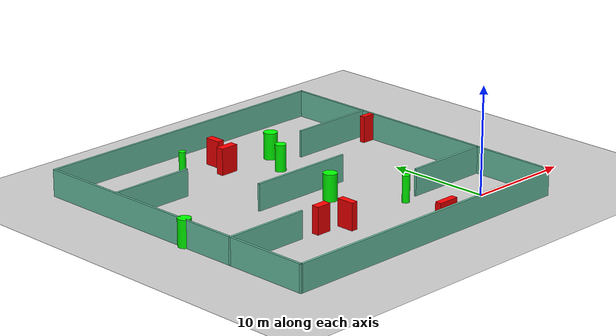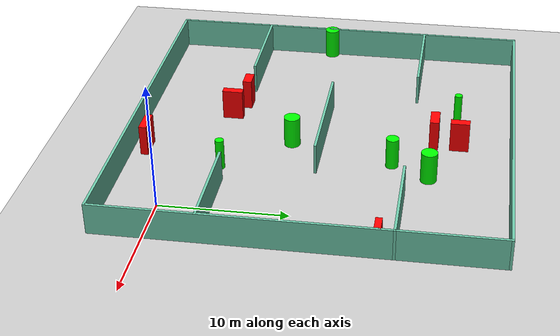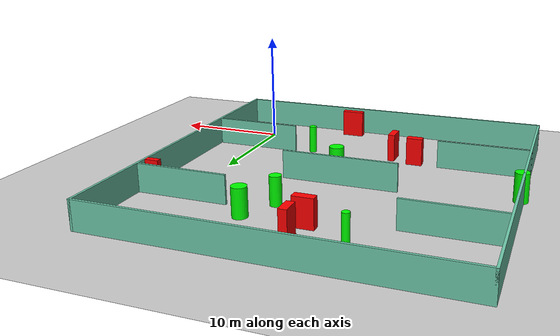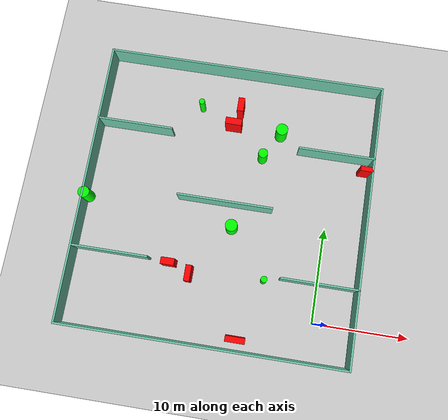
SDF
<sdf version="1.7">
 <world name="default">
  <light name="sun" type="directional">
   <pose>0 0 10 0 -0 0</pose>
   <diffuse>0.8 0.8 0.8 1</diffuse>
   <specular>0.2 0.2 0.2 1</specular>
   <attenuation>
    <range>1000</range>
    <constant>0.9</constant>
    <linear>0.01</linear>
    <quadratic>0.001</quadratic>
   </attenuation>
   <direction>-0.5 0.1 -0.9</direction>
   <spot><inner_angle>0</inner_angle><outer_angle>0</outer_angle><falloff>0</falloff></spot>
  </light>
  <model name="ground_plane">
   <static>1</static>
   <link name="link">
    <collision name="collision">
     <geometry><plane><normal>0 0 1</normal><size>100 100</size></plane></geometry>
     <surface>
      <contact><collide_bitmask>65535</collide_bitmask></contact>
      <friction><ode><mu>100</mu><mu2>50</mu2></ode></friction>
     </surface>
    </collision>
    <visual name="visual">
     <cast_shadows>0</cast_shadows>
     <geometry><plane><normal>0 0 1</normal><size>100 100</size></plane></geometry>
     <material>
      <script><uri>file://media/materials/scripts/gazebo.material</uri><name>Gazebo/Grey</name></script>
     </material>
    </visual>
   </link>
  </model>
  <gravity>0 0 -9.8</gravity>
  <magnetic_field>6e-06 2.3e-05 -4.2e-05</magnetic_field>
  <atmosphere type="adiabatic"/>
  <physics type="ode">
   <max_step_size>0.001</max_step_size>
   <real_time_factor>1</real_time_factor>
   <real_time_update_rate>1000</real_time_update_rate>
  </physics>
  <scene><ambient>0.4 0.4 0.4 1</ambient><background>0.7 0.7 0.7 1</background><shadows>1</shadows></scene>
  <spherical_coordinates>
   <surface_model>EARTH_WGS84</surface_model>
   <latitude_deg>0</latitude_deg>
   <longitude_deg>0</longitude_deg>
   <elevation>0</elevation>
   <heading_deg>0</heading_deg>
  </spherical_coordinates>
  <model name="my_base_walls">
   <link name="Wall_10">
    <collision name="Wall_10_Collision">
     <geometry><box><size>8.2 0.2 2.5</size></box></geometry>
     <pose>0 0 1.25 0 -0 0</pose>
    </collision>
    <visual name="Wall_10_Visual">
     <pose>0 0 1.25 0 -0 0</pose>
     <geometry><box><size>8.2 0.2 2.5</size></box></geometry>
     <material>
      <script><uri>file://media/materials/scripts/gazebo.material</uri><name>Gazebo/Grey</name></script>
      <ambient>0.435294 0.796078 0.67451 1</ambient>
     </material>
     <meta><layer>0</layer></meta>
    </visual>
    <pose>-11 -7 0 0 -0 0</pose>
   </link>
   <link name="Wall_12">
    <collision name="Wall_12_Collision">
     <geometry><box><size>8.2 0.2 2.5</size></box></geometry>
     <pose>0 0 1.25 0 -0 0</pose>
    </collision>
    <visual name="Wall_12_Visual">
     <pose>0 0 1.25 0 -0 0</pose>
     <geometry><box><size>8.2 0.2 2.5</size></box></geometry>
     <material>
      <script><uri>file://media/materials/scripts/gazebo.material</uri><name>Gazebo/Grey</name></script>
      <ambient>0.435294 0.796078 0.67451 1</ambient>
     </material>
     <meta><layer>0</layer></meta>
    </visual>
    <pose>-11 7 0 0 -0 0</pose>
   </link>
   <link name="Wall_14">
    <collision name="Wall_14_Collision">
     <geometry><box><size>8.2 0.2 2.5</size></box></geometry>
     <pose>0 0 1.25 0 -0 0</pose>
    </collision>
    <visual name="Wall_14_Visual">
     <pose>0 0 1.25 0 -0 0</pose>
     <geometry><box><size>8.2 0.2 2.5</size></box></geometry>
     <material>
      <script><uri>file://media/materials/scripts/gazebo.material</uri><name>Gazebo/Grey</name></script>
      <ambient>0.435294 0.796078 0.67451 1</ambient>
     </material>
     <meta><layer>0</layer></meta>
    </visual>
    <pose>11 7 0 0 -0 3.14159</pose>
   </link>
   <link name="Wall_16">
    <collision name="Wall_16_Collision">
     <geometry><box><size>10.2 0.2 2.5</size></box></geometry>
     <pose>0 0 1.25 0 -0 0</pose>
    </collision>
    <visual name="Wall_16_Visual">
     <pose>0 0 1.25 0 -0 0</pose>
     <geometry><box><size>10.2 0.2 2.5</size></box></geometry>
     <material>
      <script><uri>file://media/materials/scripts/gazebo.material</uri><name>Gazebo/Grey</name></script>
      <ambient>0.435294 0.796078 0.67451 1</ambient>
     </material>
     <meta><layer>0</layer></meta>
    </visual>
    <pose>0 0 0 0 -0 3.14159</pose>
   </link>
   <link name="Wall_2">
    <collision name="Wall_2_Collision">
     <geometry><box><size>30.2 0.2 2.5</size></box></geometry>
     <pose>0 0 1.25 0 -0 0</pose>
    </collision>
    <visual name="Wall_2_Visual">
     <pose>0 0 1.25 0 -0 0</pose>
     <geometry><box><size>30.2 0.2 2.5</size></box></geometry>
     <material>
      <script><uri>file://media/materials/scripts/gazebo.material</uri><name>Gazebo/Grey</name></script>
      <ambient>0.435294 0.796078 0.67451 1</ambient>
     </material>
     <meta><layer>0</layer></meta>
    </visual>
    <pose>0 -15 0 0 -0 3.14159</pose>
   </link>
   <link name="Wall_3">
    <collision name="Wall_3_Collision">
     <geometry><box><size>30.2 0.2 2.5</size></box></geometry>
     <pose>0 0 1.25 0 -0 0</pose>
    </collision>
    <visual name="Wall_3_Visual">
     <pose>0 0 1.25 0 -0 0</pose>
     <geometry><box><size>30.2 0.2 2.5</size></box></geometry>
     <material>
      <script><uri>file://media/materials/scripts/gazebo.material</uri><name>Gazebo/Grey</name></script>
      <ambient>0.435294 0.796078 0.67451 1</ambient>
     </material>
     <meta><layer>0</layer></meta>
    </visual>
    <pose>-15 0 0 0 -0 1.5708</pose>
   </link>
   <link name="Wall_4">
    <collision name="Wall_4_Collision">
     <geometry><box><size>30.2 0.2 2.5</size></box></geometry>
     <pose>0 0 1.25 0 -0 0</pose>
    </collision>
    <visual name="Wall_4_Visual">
     <pose>0 0 1.25 0 -0 0</pose>
     <geometry><box><size>30.2 0.2 2.5</size></box></geometry>
     <material>
      <script><uri>file://media/materials/scripts/gazebo.material</uri><name>Gazebo/Grey</name></script>
      <ambient>0.435294 0.796078 0.67451 1</ambient>
     </material>
     <meta><layer>0</layer></meta>
    </visual>
    <pose>0 15 0 0 -0 0</pose>
   </link>
   <link name="Wall_6">
    <collision name="Wall_6_Collision">
     <geometry><box><size>30.2 0.2 2.5</size></box></geometry>
     <pose>0 0 1.25 0 -0 0</pose>
    </collision>
    <visual name="Wall_6_Visual">
     <pose>0 0 1.25 0 -0 0</pose>
     <geometry><box><size>30.2 0.2 2.5</size></box></geometry>
     <material>
      <script><uri>file://media/materials/scripts/gazebo.material</uri><name>Gazebo/Grey</name></script>
      <ambient>0.435294 0.796078 0.67451 1</ambient>
     </material>
     <meta><layer>0</layer></meta>
    </visual>
    <pose>15 0 0 0 -0 1.5708</pose>
   </link>
   <link name="Wall_8">
    <collision name="Wall_8_Collision">
     <geometry><box><size>8.2 0.2 2.5</size></box></geometry>
     <pose>0 0 1.25 0 -0 0</pose>
    </collision>
    <visual name="Wall_8_Visual">
     <pose>0 0 1.25 0 -0 0</pose>
     <geometry><box><size>8.2 0.2 2.5</size></box></geometry>
     <material>
      <script><uri>file://media/materials/scripts/gazebo.material</uri><name>Gazebo/Grey</name></script>
      <ambient>0.435294 0.796078 0.67451 1</ambient>
     </material>
     <meta><layer>0</layer></meta>
    </visual>
    <pose>11 -7 0 0 -0 3.14159</pose>
   </link>
   <static>1</static>
   <pose>-11 11 0 0 -0 0</pose>
  </model>
  <model name="cylinder1">
   <static>1</static>
   <link name="link">
    <inertial>
     <mass>1</mass>
     <inertia><ixx>0.5</ixx><ixy>0</ixy><ixz>0</ixz><iyy>0.5</iyy><iyz>0</iyz><izz>1</izz></inertia>
    </inertial>
    <collision name="collision">
     <geometry><cylinder><radius>0.3413188558041368</radius><length>2.5</length></cylinder></geometry>
    </collision>
    <visual name="visual">
     <geometry><cylinder><radius>0.3413188558041368</radius><length>2.5</length></cylinder></geometry>
     <material>
      <ambient>0 1 0 1</ambient>
      <diffuse>0 1 0 1</diffuse>
      <specular>0.1 0.1 0.1 1</specular>
      <emissive>0 0 0 0</emissive>
     </material>
    </visual>
   </link>
   <pose>-5.716599904816501 3.5881649411109944 1.25 0 0 0</pose>
  </model>
  <model name="cylinder2">
   <static>1</static>
   <link name="link">
    <inertial>
     <mass>1</mass>
     <inertia><ixx>0.5</ixx><ixy>0</ixy><ixz>0</ixz><iyy>0.5</iyy><iyz>0</iyz><izz>1</izz></inertia>
    </inertial>
    <collision name="collision">
     <geometry><cylinder><radius>0.5055621148029898</radius><length>2.5</length></cylinder></geometry>
    </collision>
    <visual name="visual">
     <geometry><cylinder><radius>0.5055621148029898</radius><length>2.5</length></cylinder></geometry>
     <material>
      <ambient>0 1 0 1</ambient>
      <diffuse>0 1 0 1</diffuse>
      <specular>0.1 0.1 0.1 1</specular>
      <emissive>0 0 0 0</emissive>
     </material>
    </visual>
   </link>
   <pose>-7.810735238330995 16.779532442521074 1.25 0 0 0</pose>
  </model>
  <model name="cylinder3">
   <static>1</static>
   <link name="link">
    <inertial>
     <mass>1</mass>
     <inertia><ixx>0.5</ixx><ixy>0</ixy><ixz>0</ixz><iyy>0.5</iyy><iyz>0</iyz><izz>1</izz></inertia>
    </inertial>
    <collision name="collision">
     <geometry><cylinder><radius>0.6391939357644034</radius><length>2.5</length></cylinder></geometry>
    </collision>
    <visual name="visual">
     <geometry><cylinder><radius>0.6391939357644034</radius><length>2.5</length></cylinder></geometry>
     <material>
      <ambient>0 1 0 1</ambient>
      <diffuse>0 1 0 1</diffuse>
      <specular>0.1 0.1 0.1 1</specular>
      <emissive>0 0 0 0</emissive>
     </material>
    </visual>
   </link>
   <pose>-6.187564879162409 19.72488514324366 1.25 0 0 0</pose>
  </model>
  <model name="cylinder4">
   <static>1</static>
   <link name="link">
    <inertial>
     <mass>1</mass>
     <inertia><ixx>0.5</ixx><ixy>0</ixy><ixz>0</ixz><iyy>0.5</iyy><iyz>0</iyz><izz>1</izz></inertia>
    </inertial>
    <collision name="collision">
     <geometry><cylinder><radius>0.6066253856028765</radius><length>2.5</length></cylinder></geometry>
    </collision>
    <visual name="visual">
     <geometry><cylinder><radius>0.6066253856028765</radius><length>2.5</length></cylinder></geometry>
     <material>
      <ambient>0 1 0 1</ambient>
      <diffuse>0 1 0 1</diffuse>
      <specular>0.1 0.1 0.1 1</specular>
      <emissive>0 0 0 0</emissive>
     </material>
    </visual>
   </link>
   <pose>-25.82433957220074 9.650965828984953 1.25 0 0 0</pose>
  </model>
  <model name="cylinder5">
   <static>1</static>
   <link name="link">
    <inertial>
     <mass>1</mass>
     <inertia><ixx>0.5</ixx><ixy>0</ixy><ixz>0</ixz><iyy>0.5</iyy><iyz>0</iyz><izz>1</izz></inertia>
    </inertial>
    <collision name="collision">
     <geometry><cylinder><radius>0.31082237422973896</radius><length>2.5</length></cylinder></geometry>
    </collision>
    <visual name="visual">
     <geometry><cylinder><radius>0.31082237422973896</radius><length>2.5</length></cylinder></geometry>
     <material>
      <ambient>0 1 0 1</ambient>
      <diffuse>0 1 0 1</diffuse>
      <specular>0.1 0.1 0.1 1</specular>
      <emissive>0 0 0 0</emissive>
     </material>
    </visual>
   </link>
   <pose>-15.25522220306306 21.52815697462164 1.25 0 0 0</pose>
  </model>
  <model name="cylinder6">
   <static>1</static>
   <link name="link">
    <inertial>
     <mass>1</mass>
     <inertia><ixx>0.5</ixx><ixy>0</ixy><ixz>0</ixz><iyy>0.5</iyy><iyz>0</iyz><izz>1</izz></inertia>
    </inertial>
    <collision name="collision">
     <geometry><cylinder><radius>0.6456913431956022</radius><length>2.5</length></cylinder></geometry>
    </collision>
    <visual name="visual">
     <geometry><cylinder><radius>0.6456913431956022</radius><length>2.5</length></cylinder></geometry>
     <material>
      <ambient>0 1 0 1</ambient>
      <diffuse>0 1 0 1</diffuse>
      <specular>0.1 0.1 0.1 1</specular>
      <emissive>0 0 0 0</emissive>
     </material>
    </visual>
   </link>
   <pose>-9.913179471162714 8.561758107273992 1.25 0 0 0</pose>
  </model>
  <model name="box1">
   <static>1</static>
   <link name="link">
    <inertial>
     <mass>1</mass>
     <inertia><ixx>0.083</ixx><ixy>0</ixy><ixz>0</ixz><iyy>0.083</iyy><iyz>0</iyz><izz>0.083</izz></inertia>
    </inertial>
    <collision name="collision">
     <geometry><box><size>2.0473142254940973 0.6032781300701991 2.5</size></box></geometry>
    </collision>
    <visual name="visual">
     <geometry><box><size>2.0473142254940973 0.6032781300701991 2.5</size></box></geometry>
     <material>
      <ambient>1 0 0 1</ambient>
      <diffuse>1 0 0 1</diffuse>
      <specular>0.1 0.1 0.1 1</specular>
      <emissive>0 0 0 0</emissive>
     </material>
    </visual>
    <sensor name="my_contact" type="contact">
     <contact><collision>box_collision</collision><topic>__default_topic__</topic></contact>
    </sensor>
   </link>
   <pose>-7.703011766135345 -2.788642130255784 1.25 0 0 0</pose>
  </model>
  <model name="box2">
   <static>1</static>
   <link name="link">
    <inertial>
     <mass>1</mass>
     <inertia><ixx>0.083</ixx><ixy>0</ixy><ixz>0</ixz><iyy>0.083</iyy><iyz>0</iyz><izz>0.083</izz></inertia>
    </inertial>
    <collision name="collision">
     <geometry><box><size>1.3595040391512048 0.5047798117244763 2.5</size></box></geometry>
    </collision>
    <visual name="visual">
     <geometry><box><size>1.3595040391512048 0.5047798117244763 2.5</size></box></geometry>
     <material>
      <ambient>1 0 0 1</ambient>
      <diffuse>1 0 0 1</diffuse>
      <specular>0.1 0.1 0.1 1</specular>
      <emissive>0 0 0 0</emissive>
     </material>
    </visual>
    <sensor name="my_contact" type="contact">
     <contact><collision>box_collision</collision><topic>__default_topic__</topic></contact>
    </sensor>
   </link>
   <pose>3.3633765909175573 16.783778477162077 1.25 0 0 0</pose>
  </model>
  <model name="box3">
   <static>1</static>
   <link name="link">
    <inertial>
     <mass>1</mass>
     <inertia><ixx>0.083</ixx><ixy>0</ixy><ixz>0</ixz><iyy>0.083</iyy><iyz>0</iyz><izz>0.083</izz></inertia>
    </inertial>
    <collision name="collision">
     <geometry><box><size>1.7805304710592238 0.7311342171209148 2.5</size></box></geometry>
    </collision>
    <visual name="visual">
     <geometry><box><size>1.7805304710592238 0.7311342171209148 2.5</size></box></geometry>
     <material>
      <ambient>1 0 0 1</ambient>
      <diffuse>1 0 0 1</diffuse>
      <specular>0.1 0.1 0.1 1</specular>
      <emissive>0 0 0 0</emissive>
     </material>
    </visual>
    <sensor name="my_contact" type="contact">
     <contact><collision>box_collision</collision><topic>__default_topic__</topic></contact>
    </sensor>
   </link>
   <pose>-11.48175155746291 19.831608801784583 1.25 0 0 0</pose>
  </model>
  <model name="box4">
   <static>1</static>
   <link name="link">
    <inertial>
     <mass>1</mass>
     <inertia><ixx>0.083</ixx><ixy>0</ixy><ixz>0</ixz><iyy>0.083</iyy><iyz>0</iyz><izz>0.083</izz></inertia>
    </inertial>
    <collision name="collision">
     <geometry><box><size>1.4269594637664667 0.7197142795814568 2.5</size></box></geometry>
    </collision>
    <visual name="visual">
     <geometry><box><size>1.4269594637664667 0.7197142795814568 2.5</size></box></geometry>
     <material>
      <ambient>1 0 0 1</ambient>
      <diffuse>1 0 0 1</diffuse>
      <specular>0.1 0.1 0.1 1</specular>
      <emissive>0 0 0 0</emissive>
     </material>
    </visual>
    <sensor name="my_contact" type="contact">
     <contact><collision>box_collision</collision><topic>__default_topic__</topic></contact>
    </sensor>
   </link>
   <pose>-15.78000444521103 3.875188652859908 1.25 0 0 0</pose>
  </model>
  <model name="box5">
   <static>1</static>
   <link name="link">
    <inertial>
     <mass>1</mass>
     <inertia><ixx>0.083</ixx><ixy>0</ixy><ixz>0</ixz><iyy>0.083</iyy><iyz>0</iyz><izz>0.083</izz></inertia>
    </inertial>
    <collision name="collision">
     <geometry><box><size>0.6156258946200245 1.6607511160033492 2.5</size></box></geometry>
    </collision>
    <visual name="visual">
     <geometry><box><size>0.6156258946200245 1.6607511160033492 2.5</size></box></geometry>
     <material>
      <ambient>1 0 0 1</ambient>
      <diffuse>1 0 0 1</diffuse>
      <specular>0.1 0.1 0.1 1</specular>
      <emissive>0 0 0 0</emissive>
     </material>
    </visual>
    <sensor name="my_contact" type="contact">
     <contact><collision>box_collision</collision><topic>__default_topic__</topic></contact>
    </sensor>
   </link>
   <pose>-13.5261338109784 3.0128492401488227 1.25 0 0 0</pose>
  </model>
  <model name="box6">
   <static>1</static>
   <link name="link">
    <inertial>
     <mass>1</mass>
     <inertia><ixx>0.083</ixx><ixy>0</ixy><ixz>0</ixz><iyy>0.083</iyy><iyz>0</iyz><izz>0.083</izz></inertia>
    </inertial>
    <collision name="collision">
     <geometry><box><size>0.6960002809097279 1.5232014930971314 2.5</size></box></geometry>
    </collision>
    <visual name="visual">
     <geometry><box><size>0.6960002809097279 1.5232014930971314 2.5</size></box></geometry>
     <material>
      <ambient>1 0 0 1</ambient>
      <diffuse>1 0 0 1</diffuse>
      <specular>0.1 0.1 0.1 1</specular>
      <emissive>0 0 0 0</emissive>
     </material>
    </visual>
    <sensor name="my_contact" type="contact">
     <contact><collision>box_collision</collision><topic>__default_topic__</topic></contact>
    </sensor>
   </link>
   <pose>-10.999186768023419 21.85799925040667 1.25 0 0 0</pose>
  </model>
 </world>
</sdf>
